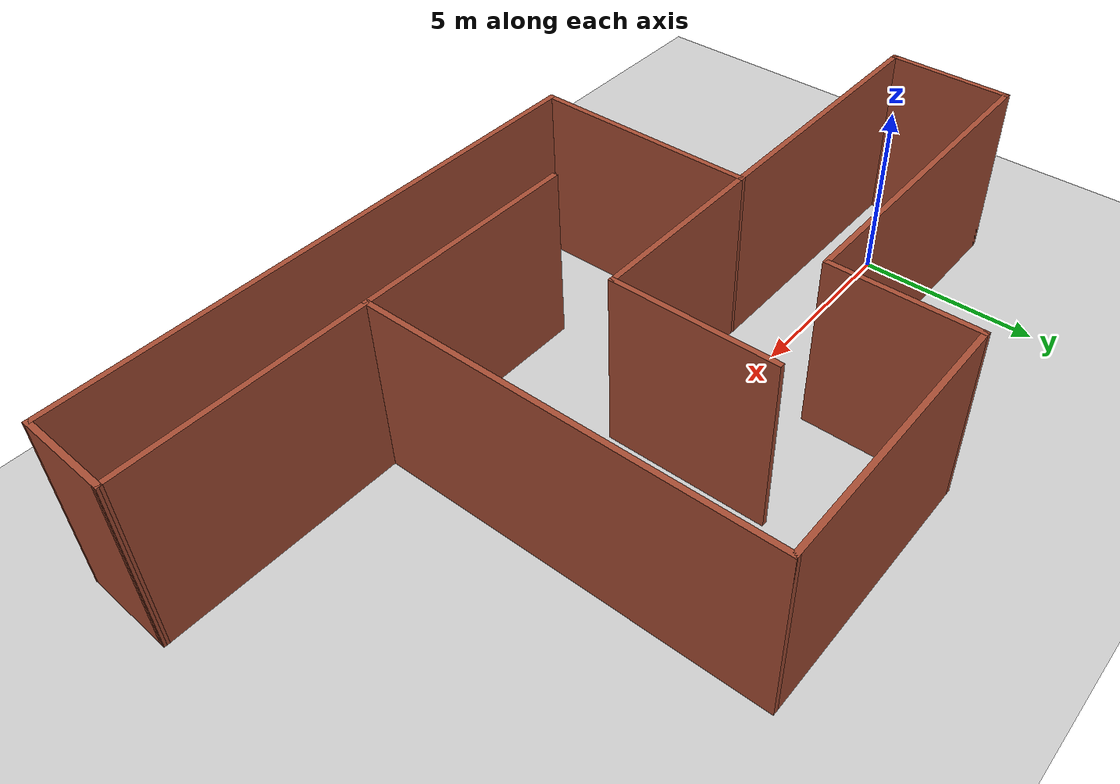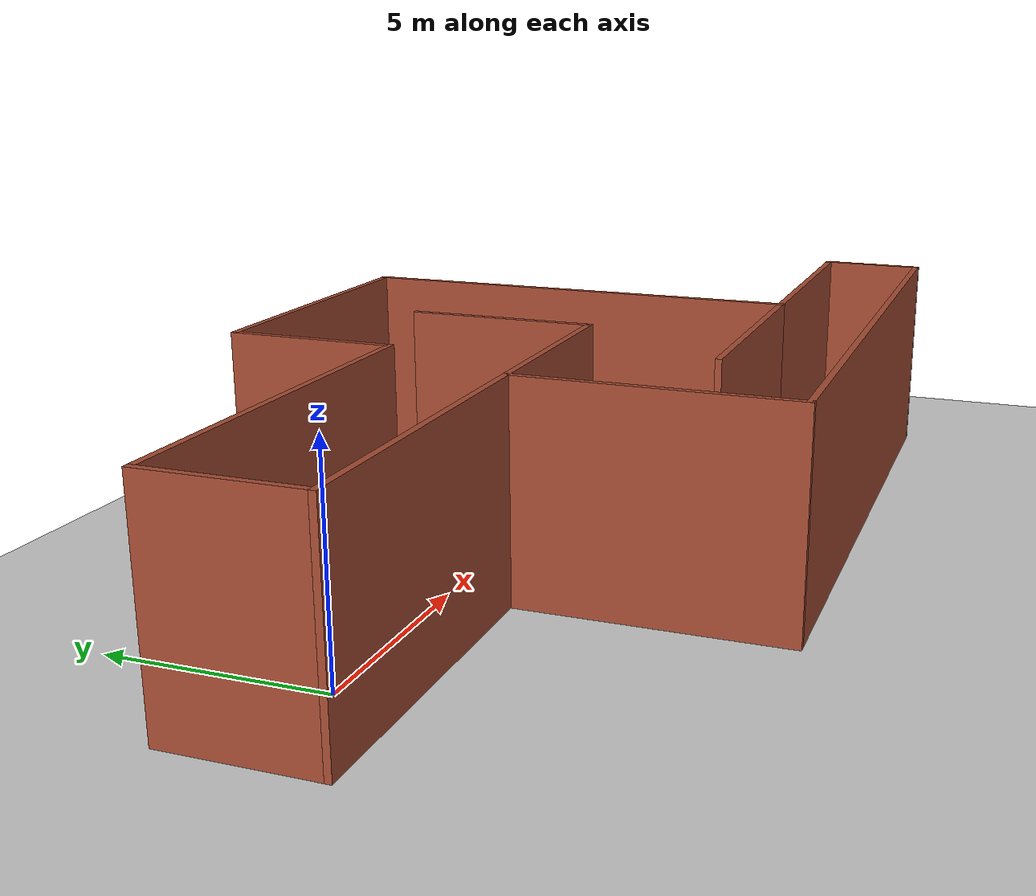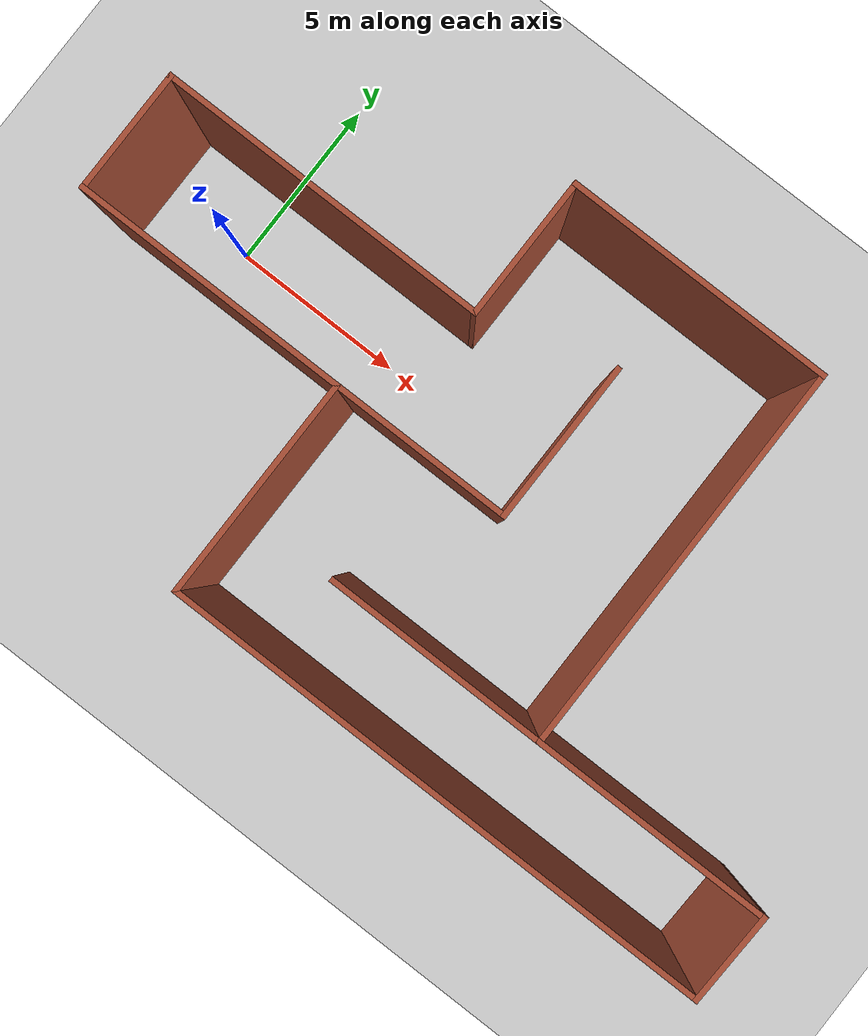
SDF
<?xml version="1.0" ?>
<sdf version="1.5">
  <world name="default">
    <!-- A global light source -->
    <include>
      <uri>model://sun</uri>
    </include>
    <!-- A ground plane -->
    <include>
      <uri>model://ground_plane</uri>
    </include>
    <include>
      <uri>model://asphalt_plane</uri>
    </include>
    <!-- Obstacles -->
    <model name='obstacles'>
      <pose>8.79264 -0.910909 0 0 -0 0</pose>
      <link name='Wall_26'>
        <collision name='Wall_26_Collision'>
          <geometry>
            <box>
              <size>4.5 0.15 5</size>
            </box>
          </geometry>
          <pose>0 0 2.5 0 -0 0</pose>
        </collision>
        <visual name='Wall_26_Visual'>
          <pose>0 0 2.5 0 -0 0</pose>
          <geometry>
            <box>
              <size>4.5 0.15 5</size>
            </box>
          </geometry>
          <material>
            <script>
              <uri>file://media/materials/scripts/gazebo.material</uri>
              <name>Gazebo/Bricks</name>
            </script>
            <ambient>1 1 1 1</ambient>
          </material>
          <meta>
            <layer>0</layer>
          </meta>
        </visual>
        <pose>1.03956 1.62799 0 0 -0 1.5708</pose>
      </link>
      <link name='Wall_36'>
        <collision name='Wall_36_Collision'>
          <geometry>
            <box>
              <size>3.5 0.15 5</size>
            </box>
          </geometry>
          <pose>0 0 2.5 0 -0 0</pose>
        </collision>
        <visual name='Wall_36_Visual'>
          <pose>0 0 2.5 0 -0 0</pose>
          <geometry>
            <box>
              <size>3.5 0.15 5</size>
            </box>
          </geometry>
          <material>
            <script>
              <uri>file://media/materials/scripts/gazebo.material</uri>
              <name>Gazebo/Bricks</name>
            </script>
            <ambient>1 1 1 1</ambient>
          </material>
          <meta>
            <layer>0</layer>
          </meta>
        </visual>
        <pose>-11.5265 1.1265 0 0 -0 1.5708</pose>
      </link>
      <link name='Wall_37'>
        <collision name='Wall_37_Collision'>
          <geometry>
            <box>
              <size>9.25 0.15 5</size>
            </box>
          </geometry>
          <pose>0 0 2.5 0 -0 0</pose>
        </collision>
        <visual name='Wall_37_Visual'>
          <pose>0 0 2.5 0 -0 0</pose>
          <geometry>
            <box>
              <size>9.25 0.15 5</size>
            </box>
          </geometry>
          <material>
            <script>
              <uri>file://media/materials/scripts/gazebo.material</uri>
              <name>Gazebo/Bricks</name>
            </script>
            <ambient>1 1 1 1</ambient>
          </material>
          <meta>
            <layer>0</layer>
          </meta>
        </visual>
        <pose>-6.9765 2.8015 0 0 -0 0</pose>
      </link>
      <link name='Wall_38'>
        <collision name='Wall_38_Collision'>
          <geometry>
            <box>
              <size>4 0.15 5</size>
            </box>
          </geometry>
          <pose>0 0 2.5 0 -0 0</pose>
        </collision>
        <visual name='Wall_38_Visual'>
          <pose>0 0 2.5 0 -0 0</pose>
          <geometry>
            <box>
              <size>4 0.15 5</size>
            </box>
          </geometry>
          <material>
            <script>
              <uri>file://media/materials/scripts/gazebo.material</uri>
              <name>Gazebo/Bricks</name>
            </script>
            <ambient>1 1 1 1</ambient>
          </material>
          <meta>
            <layer>0</layer>
          </meta>
        </visual>
        <pose>-2.4265 4.7265 0 0 -0 1.5708</pose>
      </link>
      <link name='Wall_39'>
        <collision name='Wall_39_Collision'>
          <geometry>
            <box>
              <size>7.5 0.15 5</size>
            </box>
          </geometry>
          <pose>0 0 2.5 0 -0 0</pose>
        </collision>
        <visual name='Wall_39_Visual'>
          <pose>0 0 2.5 0 -0 0</pose>
          <geometry>
            <box>
              <size>7.5 0.15 5</size>
            </box>
          </geometry>
          <material>
            <script>
              <uri>file://media/materials/scripts/gazebo.material</uri>
              <name>Gazebo/Bricks</name>
            </script>
            <ambient>1 1 1 1</ambient>
          </material>
          <meta>
            <layer>0</layer>
          </meta>
        </visual>
        <pose>1.2485 6.6515 0 0 -0 0</pose>
      </link>
      <link name='Wall_40'>
        <collision name='Wall_40_Collision'>
          <geometry>
            <box>
              <size>11 0.15 5</size>
            </box>
          </geometry>
          <pose>0 0 2.5 0 -0 0</pose>
        </collision>
        <visual name='Wall_40_Visual'>
          <pose>0 0 2.5 0 -0 0</pose>
          <geometry>
            <box>
              <size>11 0.15 5</size>
            </box>
          </geometry>
          <material>
            <script>
              <uri>file://media/materials/scripts/gazebo.material</uri>
              <name>Gazebo/Bricks</name>
            </script>
            <ambient>1 1 1 1</ambient>
          </material>
          <meta>
            <layer>0</layer>
          </meta>
        </visual>
        <pose>4.9235 1.2265 0 0 -0 -1.5708</pose>
      </link>
      <link name='Wall_42'>
        <collision name='Wall_42_Collision'>
          <geometry>
            <box>
              <size>5 0.15 5</size>
            </box>
          </geometry>
          <pose>0 0 2.5 0 -0 0</pose>
        </collision>
        <visual name='Wall_42_Visual'>
          <pose>0 0 2.5 0 -0 0</pose>
          <geometry>
            <box>
              <size>5 0.15 5</size>
            </box>
          </geometry>
          <material>
            <script>
              <uri>file://media/materials/scripts/gazebo.material</uri>
              <name>Gazebo/Bricks</name>
            </script>
            <ambient>1 1 1 1</ambient>
          </material>
          <meta>
            <layer>0</layer>
          </meta>
        </visual>
        <pose>-1.38544 -0.547013 0 0 -0 0</pose>
      </link>
      <link name='Wall_44'>
        <collision name='Wall_44_Collision'>
          <geometry>
            <box>
              <size>7.75 0.15 5</size>
            </box>
          </geometry>
          <pose>0 0 2.5 0 -0 0</pose>
        </collision>
        <visual name='Wall_44_Visual'>
          <pose>0 0 2.5 0 -0 0</pose>
          <geometry>
            <box>
              <size>7.75 0.15 5</size>
            </box>
          </geometry>
          <material>
            <script>
              <uri>file://media/materials/scripts/gazebo.material</uri>
              <name>Gazebo/Bricks</name>
            </script>
            <ambient>1 1 1 1</ambient>
          </material>
          <meta>
            <layer>0</layer>
          </meta>
        </visual>
        <pose>-7.7265 -0.548502 0 0 -0 0</pose>
      </link>
      <link name='Wall_45'>
        <collision name='Wall_45_Collision'>
          <geometry>
            <box>
              <size>6.25 0.15 5</size>
            </box>
          </geometry>
          <pose>0 0 2.5 0 -0 0</pose>
        </collision>
        <visual name='Wall_45_Visual'>
          <pose>0 0 2.5 0 -0 0</pose>
          <geometry>
            <box>
              <size>6.25 0.15 5</size>
            </box>
          </geometry>
          <material>
            <script>
              <uri>file://media/materials/scripts/gazebo.material</uri>
              <name>Gazebo/Bricks</name>
            </script>
            <ambient>1 1 1 1</ambient>
          </material>
          <meta>
            <layer>0</layer>
          </meta>
        </visual>
        <pose>-3.9265 -3.5985 0 0 -0 -1.5708</pose>
      </link>
      <link name='Wall_49'>
        <collision name='Wall_49_Collision'>
          <geometry>
            <box>
              <size>15.5 0.15 5</size>
            </box>
          </geometry>
          <pose>0 0 2.5 0 -0 0</pose>
        </collision>
        <visual name='Wall_49_Visual'>
          <pose>0 0 2.5 0 -0 0</pose>
          <geometry>
            <box>
              <size>15.5 0.15 5</size>
            </box>
          </geometry>
          <material>
            <script>
              <uri>file://media/materials/scripts/gazebo.material</uri>
              <name>Gazebo/Bricks</name>
            </script>
            <ambient>1 1 1 1</ambient>
          </material>
          <meta>
            <layer>0</layer>
          </meta>
        </visual>
        <pose>3.7485 -6.6485 0 0 -0 0</pose>
      </link>
      <link name='Wall_52'>
        <collision name='Wall_52_Collision'>
          <geometry>
            <box>
              <size>6.25 0.15 5</size>
            </box>
          </geometry>
          <pose>0 0 2.5 0 -0 0</pose>
        </collision>
        <visual name='Wall_52_Visual'>
          <pose>0 0 2.5 0 -0 0</pose>
          <geometry>
            <box>
              <size>6.25 0.15 5</size>
            </box>
          </geometry>
          <material>
            <script>
              <uri>file://media/materials/scripts/gazebo.material</uri>
              <name>Gazebo/Bricks</name>
            </script>
            <ambient>1 1 1 1</ambient>
          </material>
          <meta>
            <layer>0</layer>
          </meta>
        </visual>
        <pose>1.8735 -4.1985 0 0 -0 3.14159</pose>
      </link>
      <link name='Wall_58'>
        <collision name='Wall_58_Collision'>
          <geometry>
            <box>
              <size>6.75 0.15 5</size>
            </box>
          </geometry>
          <pose>0 0 2.5 0 -0 0</pose>
        </collision>
        <visual name='Wall_58_Visual'>
          <pose>0 0 2.5 0 -0 0</pose>
          <geometry>
            <box>
              <size>6.75 0.15 5</size>
            </box>
          </geometry>
          <material>
            <script>
              <uri>file://media/materials/scripts/gazebo.material</uri>
              <name>Gazebo/Bricks</name>
            </script>
            <ambient>1 1 1 1</ambient>
          </material>
          <meta>
            <layer>0</layer>
          </meta>
        </visual>
        <pose>8.2235 -4.1985 0 0 -0 0</pose>
      </link>
      <link name='Wall_59'>
        <collision name='Wall_59_Collision'>
          <geometry>
            <box>
              <size>2.60204 0.15 5</size>
            </box>
          </geometry>
          <pose>0 0 2.5 0 -0 0</pose>
        </collision>
        <visual name='Wall_59_Visual'>
          <pose>0 0 2.5 0 -0 0</pose>
          <geometry>
            <box>
              <size>2.60204 0.15 5</size>
            </box>
          </geometry>
          <material>
            <script>
              <uri>file://media/materials/scripts/gazebo.material</uri>
              <name>Gazebo/Bricks</name>
            </script>
            <ambient>1 1 1 1</ambient>
          </material>
          <meta>
            <layer>0</layer>
          </meta>
        </visual>
        <pose>11.4735 -5.4235 0 0 -0 -1.61159</pose>
      </link>
      <static>1</static>
    </model>
    <physics name='default_physics' default='0' type='ode'>
      <gravity>0 0 -9.8066</gravity>
      <ode>
        <solver>
          <type>quick</type>
          <iters>10</iters>
          <sor>1.3</sor>
          <use_dynamic_moi_rescaling>0</use_dynamic_moi_rescaling>
        </solver>
        <constraints>
          <cfm>0</cfm>
          <erp>0.2</erp>
          <contact_max_correcting_vel>100</contact_max_correcting_vel>
          <contact_surface_layer>0.001</contact_surface_layer>
        </constraints>
      </ode>
      <max_step_size>0.004</max_step_size>
      <real_time_factor>1</real_time_factor>
      <real_time_update_rate>250</real_time_update_rate>
      <magnetic_field>6.0e-6 2.3e-5 -4.2e-5</magnetic_field>
    </physics>
  </world>
</sdf>
